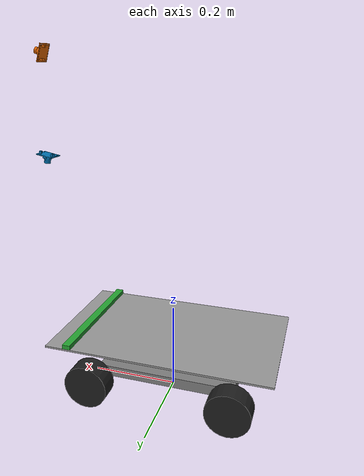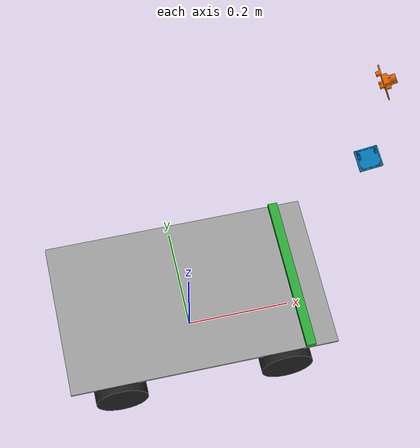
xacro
<?xml version="1.0"?>

<robot name="major" xmlns:xacro="http://www.ros.org/wiki/xacro">

  <!-- Degree-to-radian conversions -->
  <xacro:property name="degrees_45" value="0.785398163"/>
  <xacro:property name="degrees_90" value="1.57079633"/>
  <!--
   chassis_length is measured along the x axis, chassis_width
         along the y axis, and chassis_height along the z axis.
  -->
  <xacro:property name="top_chassis_length" value=".50"/>
  <xacro:property name="top_chassis_width" value=".3"/>
  <xacro:property name="top_chassis_height" value=".004"/>
  <xacro:property name="top_chassis_mass" value="0.500"/>
  <xacro:property name="top_chassis_d_from_ground" value="0.14"/>

  <xacro:property name="chassis_length" value=".32"/>
  <xacro:property name="chassis_width" value=".14"/>
  <xacro:property name="chassis_height" value=".025"/>
  <xacro:property name="chassis_mass" value="0.388"/>
  <xacro:property name="chassis_d_from_ground" value="0.05"/>

  <xacro:property name="hub_dia" value="0.08"/>
  <xacro:property name="tire_dia" value="0.02"/>
  <xacro:property name="tire_width" value="0.045"/>
  <xacro:property name="wheel_mass" value="0.29"/>
  <xacro:property name="wheel_color" value="Gazebo/Orange"/>

  <xacro:property name="axle_eff_limit" value="5.12766"/>
  <xacro:property name="axle_vel_limit" value="244.8696"/>
  <!-- These constants are used to simulate a Traxxas 2056 servo operated at
       6 V. servo_stall_torque is measured in N m. servo_no_load_speed is
       measured in rad/s. -->
  <xacro:property name="servo_stall_torque" value="0.5649"/>
  <xacro:property name="servo_no_load_speed" value="4.553"/>
  <!-- ctrl_period is gazebo_ros_control's control period. Unit: hertz. -->
  <xacro:property name="ctrl_period" value="0.01"/>

  <!-- Material -->
  <material name="chassis_mat">
    <color rgba="0.5 0.5 0.5 1"/>
  </material>
  <material name="tire_mat">
    <color rgba="0 0 0 1"/>
  </material>
  <!--
   Null inertial element. This is needed to make the model work with
         Gazebo.
  -->
  <xacro:macro name="null_inertial">
    <inertial>
      <mass value="0.001"/>
      <inertia ixx="0.001" ixy="0" ixz="0" iyy="0.001" iyz="0" izz="0.001"/>
    </inertial>
  </xacro:macro>
  <!--
   Inertia of a solid cuboid. Width is measured along the x axis, depth
         along the y axis, and height along the z axis.
  -->
  <xacro:macro name="solid_cuboid_inertial" params="width depth height mass *origin">
    <inertial>
      <xacro:insert_block name="origin"/>
      <mass value="${mass}"/>
      <inertia ixx="${mass * (depth * depth + height * height) / 12}" ixy="0" ixz="0" iyy="${mass * (width * width + height * height) / 12}" iyz="0" izz="${mass * (width * width + depth * depth) / 12}"/>
    </inertial>
  </xacro:macro>
  <xacro:macro name="thick_walled_tube_inertial" params="inner_rad outer_rad height mass">
    <inertial>
      <mass value="${mass}"/>
      <inertia ixx="${(1 / 12) * mass * (3 * (inner_rad * inner_rad + outer_rad * outer_rad) + height * height)}" ixy="0" ixz="0" iyy="${(1 / 12) * mass * (3 * (inner_rad * inner_rad + outer_rad * outer_rad) + height * height)}" iyz="0" izz="${mass * (inner_rad * inner_rad + outer_rad * outer_rad) / 2}"/>
    </inertial>
  </xacro:macro>

  <!-- base_link must have geometry so that its axes can be displayed in
     rviz. -->
  <link name="base_link">
    <visual>
      <geometry>
        <box size="0.01 0.01 0.01"/>
      </geometry>
      <material name="chassis_mat"/>
    </visual>
  </link>
  <gazebo reference="base_link">
    <material>Gazebo/Grey</material>
  </gazebo>

  <!--  Chassis  -->
  <link name="chassis">
    <visual>
      <origin xyz="0 0 ${chassis_d_from_ground}"/>
      <geometry>
        <box size="${chassis_length} ${chassis_width} ${chassis_height}"/>
      </geometry>
      <material name="chassis_mat"/>
    </visual>
    <collision>
      <origin xyz="0 0 ${chassis_d_from_ground}"/>
      <geometry>
        <box size="${chassis_length} ${chassis_width} ${chassis_height}"/>
      </geometry>
    </collision>
    <xacro:solid_cuboid_inertial width="${chassis_length}" depth="${chassis_width}" height="${chassis_height}" mass="${chassis_mass}">
    <origin xyz="0 0 ${chassis_d_from_ground}"/>
    </xacro:solid_cuboid_inertial>
  </link>
  <gazebo reference="chassis">
    <material>Gazebo/Grey</material>
  </gazebo>
  <joint name="base_link_to_chasis" type="fixed">
    <parent link="base_link"/>
    <child link="chassis"/>
  </joint>

  <!--  Top Chassis  -->
  <link name="top_chassis">
    <visual>
      <origin xyz="0 0 0.00"/>
      <geometry>
        <box size="${top_chassis_length} ${top_chassis_width} ${top_chassis_height}"/>
      </geometry>
    </visual>
    <collision>
      <origin xyz="0 0 0.0"/>
      <geometry>
        <box size="${top_chassis_length} ${top_chassis_width} ${top_chassis_height}"/>
      </geometry>
    </collision>
    <xacro:solid_cuboid_inertial width="${top_chassis_length}" depth="${top_chassis_width}" height="${chassis_height}" mass="${top_chassis_mass}">
    <origin xyz="0 0 0.0"/>
    </xacro:solid_cuboid_inertial>
  </link>
  <joint name="top_chassis_joint" type="fixed">
    <origin xyz="0 0 ${top_chassis_d_from_ground}" rpy="0 0 0"/>
    <parent link="chassis" />
    <child link="top_chassis" />
    <axis xyz="0 1 0" />
  </joint>
  <gazebo reference="top_chassis">
    <material>Gazebo/Grey</material>
  </gazebo>

  <!--  Bar Chassis  -->
  <link name="bar_chassis">
    <visual>
      <origin xyz="0 0 0.00"/>
      <geometry>
        <box size="0.018 ${top_chassis_width} 0.01"/>
      </geometry>
    </visual>
    <collision>
      <origin xyz="0 0 0.0"/>
      <geometry>
        <box size="0.018 ${top_chassis_width} 0.01"/>
      </geometry>
    </collision>
  </link>
  <joint name="bar_chassis_joint" type="fixed">
    <origin xyz="0.198 0 0.147" rpy="0 0 0"/>
    <parent link="chassis" />
    <child link="bar_chassis" />
    <axis xyz="0 1 0" />
  </joint>
  <gazebo reference="bar_chassis">
    <material>Gazebo/Green</material>
  </gazebo>

  <!--  Vertical Chassis  -->

  <!-- hokuyo -->
  <!-- Add Hokuyo laser scanner -->

  <!-- Camera -->
  <link name="camera_link">
    <collision>
      <origin xyz="0 0 0" rpy="0 0 0"/>
      <geometry>
      	<mesh filename="package://major_description/meshes/camera_elp-usb500w05g-fd100.stl" scale="0.001 0.001 0.001"/>
      </geometry>
    </collision>

    <visual>
      <origin xyz="0 0 0" rpy="2.18 0 1.57"/>
      <geometry>
      	<mesh filename="package://major_description/meshes/camera_elp-usb500w05g-fd100.stl" scale="0.001 0.001 0.001"/>
      </geometry>
    </visual>

    <inertial>
      <mass value="0.1" />
      <origin xyz="0 0 0" rpy="0 0 0"/>
      <inertia ixx="1e-6" ixy="0" ixz="0" iyy="1e-6" iyz="0" izz="1e-6" />
    </inertial>
  </link>

  <joint name="camera_joint" type="fixed">
    <axis xyz="0 0 1" />
    <origin xyz="0.295 0 0.535" rpy="0 0.76 0"/>
    <parent link="chassis"/>
    <child link="camera_link"/>
  </joint>

  <gazebo reference="camera_link">
		<sensor type="wideanglecamera" name="camera">
			<visualize>true</visualize>
			<update_rate>30.0</update_rate>
			<camera name="tracking_camera">
				<pose>0 0 0 0 0 0</pose>
                <horizontal_fov>2.6</horizontal_fov>
				<distortion>
					<k1>-0.2673</k1>
					<k2>0.0629</k2>
					<k3>-0.0061</k3>
					<p1>0.0012</p1>
					<p2>-9.1477e-04</p2>
					<center>0.501996094 0.4585875</center>
				</distortion>
				<image>
					<width>160</width>
					<height>120</height>
					<format>R8G8B8</format>
				</image>
				<clip>
					<near>0.1</near>
					<far>100</far>
				</clip>
				<noise>
					<type>gaussian</type>
					<mean>0.0</mean>
					<stddev>0.007</stddev>
				</noise>
			</camera>
			<plugin name="tracking_camera_controller" filename="libgazebo_ros_camera.so">
				<visualize>true</visualize>
				<alwaysOn>true</alwaysOn>
				<updateRate>0.0</updateRate>
				<cameraName>major_tracking_camera</cameraName>
				<imageTopicName>image_raw</imageTopicName>
				<cameraInfoTopicName>camera_info</cameraInfoTopicName>
				<frameName>camera_link</frameName>
			</plugin>
		</sensor>
	</gazebo>

  <!-- Top Camera -->
  <link name="top_camera_link">
    <collision>
      <origin xyz="0 0 0" rpy="0 0 0"/>
      <geometry>
      	<mesh filename="package://major_description/meshes/camera_elp-usb500w05g-fd100.stl" scale="0.001 0.001 0.001"/>
      </geometry>
    </collision>

    <visual>
      <origin xyz="0 0 0" rpy="1.57 0 1.57"/>
      <geometry>
      	<mesh filename="package://major_description/meshes/camera_elp-usb500w05g-fd100.stl" scale="0.001 0.001 0.001"/>
      </geometry>
    </visual>

    <inertial>
      <mass value="0.1" />
      <origin xyz="0 0 0" rpy="0 0 0"/>
      <inertia ixx="1e-6" ixy="0" ixz="0" iyy="1e-6" iyz="0" izz="1e-6" />
    </inertial>
  </link>

  <joint name="top_camera_joint" type="fixed">
    <axis xyz="0 0 1" />
    <origin xyz="0.288 0 0.75" rpy="0 -0.3 0"/>
    <parent link="chassis"/>
    <child link="top_camera_link"/>
  </joint>

	<gazebo reference="top_camera_link">
		<sensor type="wideanglecamera" name="top_camera">
			<visualize>true</visualize>
			<update_rate>30.0</update_rate>
			<camera name="top_camera">
				<pose>0 0 0 0 0 0</pose>
                <horizontal_fov>2.6</horizontal_fov>
				<distortion>
					<k1>-0.254536654032040</k1>
					<k2>0.052707476272924</k2>
					<k3>0.004060325839474</k3>
					<p1>0.001216492819178</p1>
					<p2>0.001034739611621</p2>
					<center>0.486 0.432</center>
				</distortion>
				<image>
					<width>320</width>
					<height>240</height>
					<format>R8G8B8</format>
				</image>
				<clip>
					<near>0.1</near>
					<far>100</far>
				</clip>
				<noise>
					<type>gaussian</type>
					<mean>0.0</mean>
					<stddev>0.007</stddev>
				</noise>
			</camera>
			<plugin name="top_camera_controller" filename="libgazebo_ros_camera.so">
				<visualize>true</visualize>
				<alwaysOn>true</alwaysOn>
				<updateRate>0.0</updateRate>
				<cameraName>major_top_camera</cameraName>
				<imageTopicName>image_raw</imageTopicName>
				<cameraInfoTopicName>top_camera_info</cameraInfoTopicName>
				<frameName>top_camera_link</frameName>
			</plugin>
		</sensor>
	</gazebo>
  <!-- Camera -->

  <!--IMU-->

  <!-- Import Rviz colors -->
  <xacro:include filename="$(find major_description)/urdf/materials.xacro" />

  <!-- LEFT REAR WHEEL -->
  <link name="left_rear_wheel">

    <collision name="collision">
      <origin xyz="0 0 0" rpy="0 0 0" />
      <geometry>
        <cylinder length="${tire_width}" radius="${(hub_dia + tire_dia)/2}" />
      </geometry>
    </collision>

    <visual name="left_rear_wheel_visual">
      <origin xyz="0 0 0" rpy="0 0 0" />
      <geometry>
        <cylinder length="${tire_width}" radius="${(hub_dia + tire_dia)/2}" />
      </geometry>
    <material name="black" />
    </visual>

    <xacro:thick_walled_tube_inertial
          inner_rad="${hub_dia / 2}" outer_rad="${tire_dia / 2}"
          height="${tire_width}" mass="${wheel_mass}"/>

  </link>
  <!--left rear wheel joint-->
  <joint type="continuous" name="left_rear_wheel_joint">
     <origin xyz="-0.16 0.125 0.05" rpy="${degrees_90} 0 0" />
    <parent link="chassis" />
    <child link="left_rear_wheel" />
    <axis xyz="0 0 -1" />
    <limit effort="${axle_eff_limit}" velocity="${axle_vel_limit}"/>
  </joint>
  <!-- Material -->
  <gazebo reference="left_rear_wheel">
    <mu1>0.5</mu1>
    <mu2>0.5</mu2>
    <material>${wheel_color}</material>
  </gazebo>
  <!--Transmission-->
  <transmission name="left_rear_wheel_trans">
    <type>transmission_interface/SimpleTransmission</type>
    <joint name="left_rear_wheel_joint">
      <hardwareInterface>hardware_interface/EffortJointInterface</hardwareInterface>
      <mechanicalReduction>1</mechanicalReduction>
    </joint>
    <actuator name="rear_motor">
      <hardwareInterface>hardware_interface/EffortJointInterface</hardwareInterface>
      <mechanicalReduction>1</mechanicalReduction>
    </actuator>
  </transmission>

  <!--RIGHT REAR WHEEL -->
  <link name="right_rear_wheel">
    <collision name="collision">
      <origin xyz="0 0 0.0" rpy="0 0 0" />
      <geometry>
        <cylinder length="${tire_width}" radius="${(hub_dia + tire_dia)/2}" />
      </geometry>
    </collision>

    <visual name="right_rear_wheel_visual">
      <origin xyz="0 0 0" rpy="0 0 0" />
      <geometry>
        <cylinder length="${tire_width}" radius="${(hub_dia + tire_dia)/2}" />
      </geometry>
    <material name="black" />
    </visual>

    <xacro:thick_walled_tube_inertial
          inner_rad="${hub_dia / 2}" outer_rad="${tire_dia / 2}"
          height="${tire_width}" mass="${wheel_mass}"/>
  </link>
  <!--right rear wheel joint-->
  <joint type="continuous" name="right_rear_wheel_joint">
     <origin xyz="-0.16 -0.125 0.05" rpy="${degrees_90} 0 0" />
    <parent link="chassis" />
    <child link="right_rear_wheel" />
    <axis xyz="0 0 -1" />
    <limit effort="${axle_eff_limit}" velocity="${axle_vel_limit}"/>
  </joint>
  <!-- Material -->
  <gazebo reference="right_rear_wheel">
    <mu1>0.5</mu1>
    <mu2>0.5</mu2>
    <material>${wheel_color}</material>
  </gazebo>
  <!--Transmission-->
  <transmission name="right_rear_wheel_trans">
    <type>transmission_interface/SimpleTransmission</type>
    <joint name="right_rear_wheel_joint">
      <hardwareInterface>hardware_interface/EffortJointInterface</hardwareInterface>
      <mechanicalReduction>1</mechanicalReduction>
    </joint>
    <actuator name="rear_motor">
      <hardwareInterface>hardware_interface/EffortJointInterface</hardwareInterface>
      <mechanicalReduction>1</mechanicalReduction>
    </actuator>
  </transmission>

  <!-- left front wheel steering link-->
  <link name="left_steering_link">
    <xacro:null_inertial/>
  </link>
  <joint type="revolute" name="left_steering_joint">
    <origin xyz="0.16 0.125 0.05" rpy="0 0 0"/>
    <parent link="chassis" />
    <child link="left_steering_link" />
    <axis xyz="0 0 1" />
    <limit lower="${-degrees_45}" upper="${degrees_45}"
           effort="${servo_stall_torque}" velocity="${servo_no_load_speed}"/>
  </joint>
  <!-- Material -->
  <gazebo reference="left_steering_link">
    <mu1>0.6</mu1>
    <mu2>0.6</mu2>
    <material>${wheel_color}</material>
  </gazebo>
  <!--Transmission-->
  <transmission name="left_steering_trans">
    <type>transmission_interface/SimpleTransmission</type>
    <joint name="left_steering_joint">
      <hardwareInterface>hardware_interface/EffortJointInterface</hardwareInterface>
      <mechanicalReduction>1</mechanicalReduction>
    </joint>
    <actuator name="left_steering_act">
      <hardwareInterface>hardware_interface/EffortJointInterface</hardwareInterface>
      <mechanicalReduction>1</mechanicalReduction>
    </actuator>
  </transmission>

  <!-- right front wheel steering link-->
  <link name="right_steering_link">
    <xacro:null_inertial/>
  </link>
  <joint type="revolute" name="right_steering_joint">
    <origin xyz="0.16 -0.125 0.05" rpy="0 0 0"/>
    <parent link="chassis" />
    <child link="right_steering_link" />
    <axis xyz="0 0 1" />
    <limit lower="${-degrees_45}" upper="${degrees_45}"
           effort="${servo_stall_torque}" velocity="${servo_no_load_speed}"/>
  </joint>
  <!-- Material -->
  <gazebo reference="right_steering_link">
    <mu1>0.6</mu1>
    <mu2>0.6</mu2>
    <material>${wheel_color}</material>
  </gazebo>
  <!--Transmission-->
  <transmission name="right_steering_trans">
    <type>transmission_interface/SimpleTransmission</type>
    <joint name="right_steering_joint">
      <hardwareInterface>hardware_interface/EffortJointInterface</hardwareInterface>
      <mechanicalReduction>1</mechanicalReduction>
    </joint>
    <actuator name="right_steering_act">
      <hardwareInterface>hardware_interface/EffortJointInterface</hardwareInterface>
      <mechanicalReduction>1</mechanicalReduction>
    </actuator>
  </transmission>

  <!-- LEFT FRONT WHEEL -->
  <link name="left_front_wheel">

    <collision name="collision">
      <origin xyz="0 0 0" rpy="0 0 0" />
      <geometry>
        <cylinder length="${tire_width}" radius="${(hub_dia + tire_dia)/2}" />
      </geometry>
    </collision>

    <visual name="left_front_wheel_visual">
      <origin xyz="0 0 0" rpy="0 0 0" />
      <geometry>
        <cylinder length="${tire_width}" radius="${(hub_dia + tire_dia)/2}" />
      </geometry>
    <material name="black" />
    </visual>

    <xacro:thick_walled_tube_inertial
          inner_rad="${hub_dia / 2}" outer_rad="${tire_dia / 2}"
          height="${tire_width}" mass="${wheel_mass}"/>

  </link>
  <!--left front wheel joint-->
  <joint type="continuous" name="left_front_wheel_joint">
    <origin xyz="0 0 0" rpy="${degrees_90} 0 0"/>
    <parent link="left_steering_link" />
    <child link="left_front_wheel" />
    <axis xyz="0 0 -1" />
    <limit effort="${axle_eff_limit}" velocity="${axle_vel_limit}"/>
  </joint>
  <!-- Material -->
  <gazebo reference="left_front_wheel">
    <mu1>0.5</mu1>
    <mu2>0.5</mu2>
    <material>${wheel_color}</material>
  </gazebo>
  <!--Transmission-->
  <transmission name="left_front_wheel_trans">
    <type>transmission_interface/SimpleTransmission</type>
    <joint name="left_front_wheel_joint">
      <hardwareInterface>hardware_interface/EffortJointInterface</hardwareInterface>
      <mechanicalReduction>1</mechanicalReduction>
    </joint>
    <actuator name="left_front_wheel_act">
      <hardwareInterface>hardware_interface/EffortJointInterface</hardwareInterface>
      <mechanicalReduction>1</mechanicalReduction>
    </actuator>
  </transmission>

  <!-- RIGHT FRONT WHEEL -->
  <link name="right_front_wheel">
    <collision name="collision">
      <origin xyz="0 0 0" rpy="0 0 0" />
      <geometry>
        <cylinder length="${tire_width}" radius="${(hub_dia + tire_dia)/2}" />
      </geometry>
    </collision>

    <visual name="right_front_wheel_visual">
      <origin xyz="0 0 0" rpy="0 0 0" />
      <geometry>
        <cylinder length="${tire_width}" radius="${(hub_dia + tire_dia)/2}" />
      </geometry>
    <material name="black" />
    </visual>

    <xacro:thick_walled_tube_inertial
          inner_rad="${hub_dia / 2}" outer_rad="${tire_dia / 2}"
          height="${tire_width}" mass="${wheel_mass}"/>
  </link>
  <!--right front wheel joint-->
  <joint type="continuous" name="right_front_wheel_joint">
    <origin xyz="0 0 0" rpy="${degrees_90} 0 0"/>
    <parent link="right_steering_link" />
    <child link="right_front_wheel" />
    <axis xyz="0 0 -1" />
    <limit effort="${axle_eff_limit}" velocity="${axle_vel_limit}"/>
  </joint>
  <!-- Material -->
  <gazebo reference="right_front_wheel">
    <mu1>0.5</mu1>
    <mu2>0.5</mu2>
    <material>${wheel_color}</material>
  </gazebo>
  <!--Transmission-->
  <transmission name="right_front_wheel_trans">
    <type>transmission_interface/SimpleTransmission</type>
    <joint name="right_front_wheel_joint">
      <hardwareInterface>hardware_interface/EffortJointInterface</hardwareInterface>
      <mechanicalReduction>1</mechanicalReduction>
    </joint>
    <actuator name="right_front_wheel_act">
      <hardwareInterface>hardware_interface/EffortJointInterface</hardwareInterface>
      <mechanicalReduction>1</mechanicalReduction>
    </actuator>
  </transmission>

  <gazebo>
    <plugin name="ground_truth" filename="libgazebo_ros_p3d.so">
      <frameName>map</frameName>
      <bodyName>base_link</bodyName>
      <tfName>/base_link</tfName>
      <topicName>odom_ground_truth</topicName>
      <updateRate>50.0</updateRate>
    </plugin>
  </gazebo>
  <!-- ros_control plugin -->
  <gazebo>
      <plugin name="gazebo_ros_control" filename="libgazebo_ros_control.so">
          <robotNamespace>/</robotNamespace>
          <robotSimType>gazebo_ros_control/DefaultRobotHWSim</robotSimType>
          <legacyModeNS>True</legacyModeNS>legacyModeNS>
      </plugin>
  </gazebo>

</robot>
